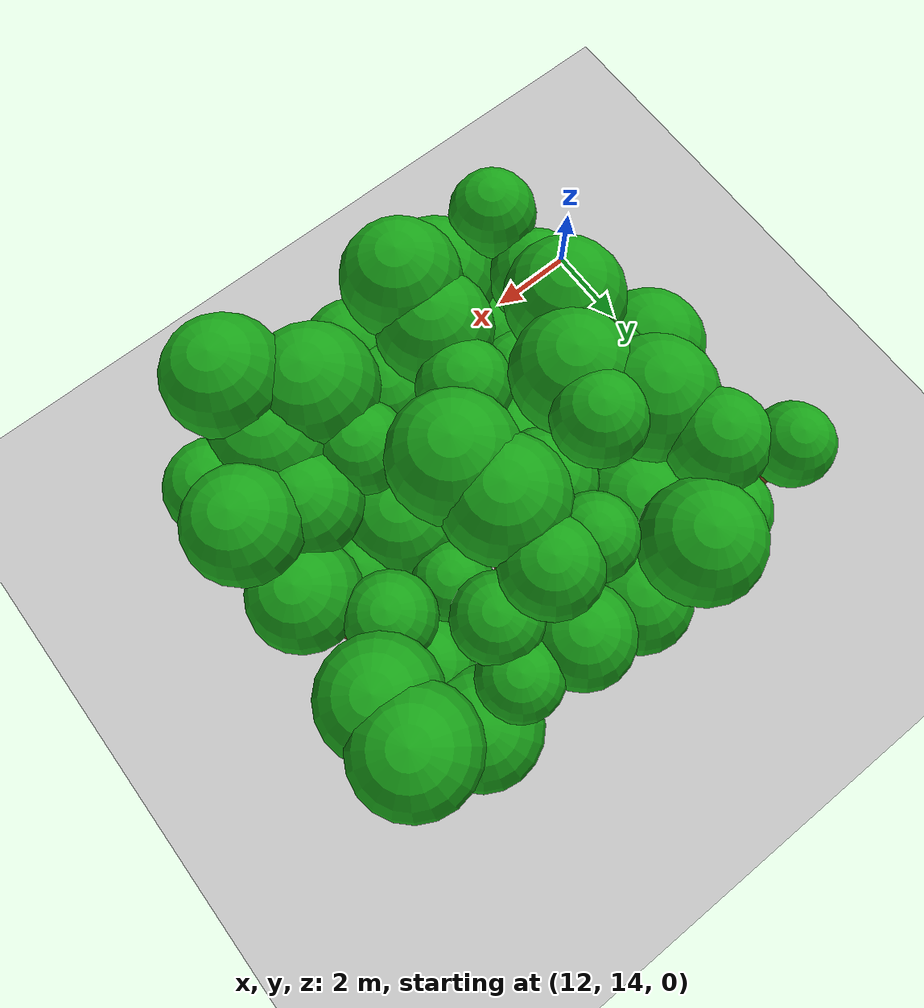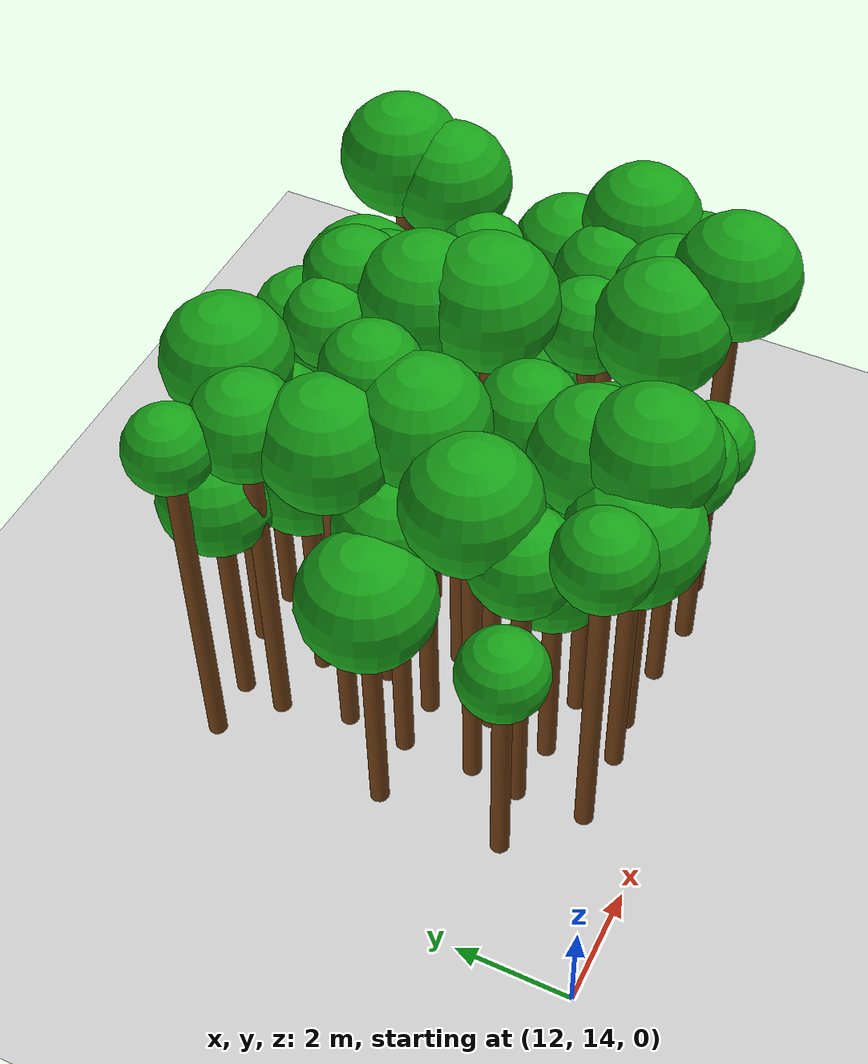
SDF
<sdf version="1.6">
 <world name="forest_world">
  <include><uri>model://sun</uri></include>
  <include><uri>model://ground_plane</uri></include>
  <model name="tree_2219_trunk">
   <static>true</static>
   <pose>14.00 16.16 2.14 0 0 0</pose>
   <link name="link">
    <collision name="collision">
     <geometry><cylinder><radius>0.16</radius><length>4.27</length></cylinder></geometry>
    </collision>
    <visual name="visual">
     <geometry><cylinder><radius>0.16</radius><length>4.27</length></cylinder></geometry>
     <material><ambient>0.35 0.20 0.05 1</ambient><diffuse>0.45 0.25 0.08 1</diffuse></material>
    </visual>
   </link>
  </model>
  <model name="tree_2219_leaf">
   <static>true</static>
   <pose>14.00 16.16 4.71 0 0 0</pose>
   <link name="link">
    <collision name="collision"><geometry><sphere><radius>0.73</radius></sphere></geometry></collision>
    <visual name="visual">
     <geometry><sphere><radius>0.73</radius></sphere></geometry>
     <material><ambient>0.05 0.45 0.05 1</ambient><diffuse>0.10 0.65 0.10 1</diffuse></material>
    </visual>
   </link>
  </model>
  <model name="tree_2221_trunk">
   <static>true</static>
   <pose>14.03 18.38 2.28 0 0 0</pose>
   <link name="link">
    <collision name="collision">
     <geometry><cylinder><radius>0.16</radius><length>4.55</length></cylinder></geometry>
    </collision>
    <visual name="visual">
     <geometry><cylinder><radius>0.16</radius><length>4.55</length></cylinder></geometry>
     <material><ambient>0.35 0.20 0.05 1</ambient><diffuse>0.45 0.25 0.08 1</diffuse></material>
    </visual>
   </link>
  </model>
  <model name="tree_2221_leaf">
   <static>true</static>
   <pose>14.03 18.38 5.21 0 0 0</pose>
   <link name="link">
    <collision name="collision"><geometry><sphere><radius>1.09</radius></sphere></geometry></collision>
    <visual name="visual">
     <geometry><sphere><radius>1.09</radius></sphere></geometry>
     <material><ambient>0.05 0.45 0.05 1</ambient><diffuse>0.10 0.65 0.10 1</diffuse></material>
    </visual>
   </link>
  </model>
  <model name="tree_2224_trunk">
   <static>true</static>
   <pose>14.05 21.52 3.28 0 0 0</pose>
   <link name="link">
    <collision name="collision">
     <geometry><cylinder><radius>0.16</radius><length>6.56</length></cylinder></geometry>
    </collision>
    <visual name="visual">
     <geometry><cylinder><radius>0.16</radius><length>6.56</length></cylinder></geometry>
     <material><ambient>0.35 0.20 0.05 1</ambient><diffuse>0.45 0.25 0.08 1</diffuse></material>
    </visual>
   </link>
  </model>
  <model name="tree_2224_leaf">
   <static>true</static>
   <pose>14.05 21.52 6.99 0 0 0</pose>
   <link name="link">
    <collision name="collision"><geometry><sphere><radius>0.70</radius></sphere></geometry></collision>
    <visual name="visual">
     <geometry><sphere><radius>0.70</radius></sphere></geometry>
     <material><ambient>0.05 0.45 0.05 1</ambient><diffuse>0.10 0.65 0.10 1</diffuse></material>
    </visual>
   </link>
  </model>
  <model name="tree_2273_trunk">
   <static>true</static>
   <pose>15.09 15.13 3.08 0 0 0</pose>
   <link name="link">
    <collision name="collision">
     <geometry><cylinder><radius>0.16</radius><length>6.17</length></cylinder></geometry>
    </collision>
    <visual name="visual">
     <geometry><cylinder><radius>0.16</radius><length>6.17</length></cylinder></geometry>
     <material><ambient>0.35 0.20 0.05 1</ambient><diffuse>0.45 0.25 0.08 1</diffuse></material>
    </visual>
   </link>
  </model>
  <model name="tree_2273_leaf">
   <static>true</static>
   <pose>15.09 15.13 6.64 0 0 0</pose>
   <link name="link">
    <collision name="collision"><geometry><sphere><radius>0.78</radius></sphere></geometry></collision>
    <visual name="visual">
     <geometry><sphere><radius>0.78</radius></sphere></geometry>
     <material><ambient>0.05 0.45 0.05 1</ambient><diffuse>0.10 0.65 0.10 1</diffuse></material>
    </visual>
   </link>
  </model>
  <model name="tree_2274_trunk">
   <static>true</static>
   <pose>15.04 16.34 2.77 0 0 0</pose>
   <link name="link">
    <collision name="collision">
     <geometry><cylinder><radius>0.16</radius><length>5.53</length></cylinder></geometry>
    </collision>
    <visual name="visual">
     <geometry><cylinder><radius>0.16</radius><length>5.53</length></cylinder></geometry>
     <material><ambient>0.35 0.20 0.05 1</ambient><diffuse>0.45 0.25 0.08 1</diffuse></material>
    </visual>
   </link>
  </model>
  <model name="tree_2274_leaf">
   <static>true</static>
   <pose>15.04 16.34 6.05 0 0 0</pose>
   <link name="link">
    <collision name="collision"><geometry><sphere><radius>0.86</radius></sphere></geometry></collision>
    <visual name="visual">
     <geometry><sphere><radius>0.86</radius></sphere></geometry>
     <material><ambient>0.05 0.45 0.05 1</ambient><diffuse>0.10 0.65 0.10 1</diffuse></material>
    </visual>
   </link>
  </model>
  <model name="tree_2275_trunk">
   <static>true</static>
   <pose>15.16 17.21 3.04 0 0 0</pose>
   <link name="link">
    <collision name="collision">
     <geometry><cylinder><radius>0.16</radius><length>6.08</length></cylinder></geometry>
    </collision>
    <visual name="visual">
     <geometry><cylinder><radius>0.16</radius><length>6.08</length></cylinder></geometry>
     <material><ambient>0.35 0.20 0.05 1</ambient><diffuse>0.45 0.25 0.08 1</diffuse></material>
    </visual>
   </link>
  </model>
  <model name="tree_2275_leaf">
   <static>true</static>
   <pose>15.16 17.21 6.72 0 0 0</pose>
   <link name="link">
    <collision name="collision"><geometry><sphere><radius>1.07</radius></sphere></geometry></collision>
    <visual name="visual">
     <geometry><sphere><radius>1.07</radius></sphere></geometry>
     <material><ambient>0.05 0.45 0.05 1</ambient><diffuse>0.10 0.65 0.10 1</diffuse></material>
    </visual>
   </link>
  </model>
  <model name="tree_2276_trunk">
   <static>true</static>
   <pose>15.14 18.47 2.54 0 0 0</pose>
   <link name="link">
    <collision name="collision">
     <geometry><cylinder><radius>0.16</radius><length>5.09</length></cylinder></geometry>
    </collision>
    <visual name="visual">
     <geometry><cylinder><radius>0.16</radius><length>5.09</length></cylinder></geometry>
     <material><ambient>0.35 0.20 0.05 1</ambient><diffuse>0.45 0.25 0.08 1</diffuse></material>
    </visual>
   </link>
  </model>
  <model name="tree_2276_leaf">
   <static>true</static>
   <pose>15.14 18.47 5.66 0 0 0</pose>
   <link name="link">
    <collision name="collision"><geometry><sphere><radius>0.96</radius></sphere></geometry></collision>
    <visual name="visual">
     <geometry><sphere><radius>0.96</radius></sphere></geometry>
     <material><ambient>0.05 0.45 0.05 1</ambient><diffuse>0.10 0.65 0.10 1</diffuse></material>
    </visual>
   </link>
  </model>
  <model name="tree_2277_trunk">
   <static>true</static>
   <pose>15.20 19.56 3.13 0 0 0</pose>
   <link name="link">
    <collision name="collision">
     <geometry><cylinder><radius>0.16</radius><length>6.26</length></cylinder></geometry>
    </collision>
    <visual name="visual">
     <geometry><cylinder><radius>0.16</radius><length>6.26</length></cylinder></geometry>
     <material><ambient>0.35 0.20 0.05 1</ambient><diffuse>0.45 0.25 0.08 1</diffuse></material>
    </visual>
   </link>
  </model>
  <model name="tree_2277_leaf">
   <static>true</static>
   <pose>15.20 19.56 6.90 0 0 0</pose>
   <link name="link">
    <collision name="collision"><geometry><sphere><radius>1.06</radius></sphere></geometry></collision>
    <visual name="visual">
     <geometry><sphere><radius>1.06</radius></sphere></geometry>
     <material><ambient>0.05 0.45 0.05 1</ambient><diffuse>0.10 0.65 0.10 1</diffuse></material>
    </visual>
   </link>
  </model>
  <model name="tree_2278_trunk">
   <static>true</static>
   <pose>14.93 20.75 3.23 0 0 0</pose>
   <link name="link">
    <collision name="collision">
     <geometry><cylinder><radius>0.16</radius><length>6.47</length></cylinder></geometry>
    </collision>
    <visual name="visual">
     <geometry><cylinder><radius>0.16</radius><length>6.47</length></cylinder></geometry>
     <material><ambient>0.35 0.20 0.05 1</ambient><diffuse>0.45 0.25 0.08 1</diffuse></material>
    </visual>
   </link>
  </model>
  <model name="tree_2278_leaf">
   <static>true</static>
   <pose>14.93 20.75 6.99 0 0 0</pose>
   <link name="link">
    <collision name="collision"><geometry><sphere><radius>0.87</radius></sphere></geometry></collision>
    <visual name="visual">
     <geometry><sphere><radius>0.87</radius></sphere></geometry>
     <material><ambient>0.05 0.45 0.05 1</ambient><diffuse>0.10 0.65 0.10 1</diffuse></material>
    </visual>
   </link>
  </model>
  <model name="tree_2279_trunk">
   <static>true</static>
   <pose>15.03 21.53 2.20 0 0 0</pose>
   <link name="link">
    <collision name="collision">
     <geometry><cylinder><radius>0.16</radius><length>4.40</length></cylinder></geometry>
    </collision>
    <visual name="visual">
     <geometry><cylinder><radius>0.16</radius><length>4.40</length></cylinder></geometry>
     <material><ambient>0.35 0.20 0.05 1</ambient><diffuse>0.45 0.25 0.08 1</diffuse></material>
    </visual>
   </link>
  </model>
  <model name="tree_2279_leaf">
   <static>true</static>
   <pose>15.03 21.53 4.98 0 0 0</pose>
   <link name="link">
    <collision name="collision"><geometry><sphere><radius>0.97</radius></sphere></geometry></collision>
    <visual name="visual">
     <geometry><sphere><radius>0.97</radius></sphere></geometry>
     <material><ambient>0.05 0.45 0.05 1</ambient><diffuse>0.10 0.65 0.10 1</diffuse></material>
    </visual>
   </link>
  </model>
  <model name="tree_2328_trunk">
   <static>true</static>
   <pose>16.38 15.13 2.57 0 0 0</pose>
   <link name="link">
    <collision name="collision">
     <geometry><cylinder><radius>0.16</radius><length>5.15</length></cylinder></geometry>
    </collision>
    <visual name="visual">
     <geometry><cylinder><radius>0.16</radius><length>5.15</length></cylinder></geometry>
     <material><ambient>0.35 0.20 0.05 1</ambient><diffuse>0.45 0.25 0.08 1</diffuse></material>
    </visual>
   </link>
  </model>
  <model name="tree_2328_leaf">
   <static>true</static>
   <pose>16.38 15.13 5.80 0 0 0</pose>
   <link name="link">
    <collision name="collision"><geometry><sphere><radius>1.10</radius></sphere></geometry></collision>
    <visual name="visual">
     <geometry><sphere><radius>1.10</radius></sphere></geometry>
     <material><ambient>0.05 0.45 0.05 1</ambient><diffuse>0.10 0.65 0.10 1</diffuse></material>
    </visual>
   </link>
  </model>
  <model name="tree_2329_trunk">
   <static>true</static>
   <pose>16.06 16.24 2.10 0 0 0</pose>
   <link name="link">
    <collision name="collision">
     <geometry><cylinder><radius>0.16</radius><length>4.20</length></cylinder></geometry>
    </collision>
    <visual name="visual">
     <geometry><cylinder><radius>0.16</radius><length>4.20</length></cylinder></geometry>
     <material><ambient>0.35 0.20 0.05 1</ambient><diffuse>0.45 0.25 0.08 1</diffuse></material>
    </visual>
   </link>
  </model>
  <model name="tree_2329_leaf">
   <static>true</static>
   <pose>16.06 16.24 4.77 0 0 0</pose>
   <link name="link">
    <collision name="collision"><geometry><sphere><radius>0.96</radius></sphere></geometry></collision>
    <visual name="visual">
     <geometry><sphere><radius>0.96</radius></sphere></geometry>
     <material><ambient>0.05 0.45 0.05 1</ambient><diffuse>0.10 0.65 0.10 1</diffuse></material>
    </visual>
   </link>
  </model>
  <model name="tree_2330_trunk">
   <static>true</static>
   <pose>16.18 17.35 2.27 0 0 0</pose>
   <link name="link">
    <collision name="collision">
     <geometry><cylinder><radius>0.16</radius><length>4.54</length></cylinder></geometry>
    </collision>
    <visual name="visual">
     <geometry><cylinder><radius>0.16</radius><length>4.54</length></cylinder></geometry>
     <material><ambient>0.35 0.20 0.05 1</ambient><diffuse>0.45 0.25 0.08 1</diffuse></material>
    </visual>
   </link>
  </model>
  <model name="tree_2330_leaf">
   <static>true</static>
   <pose>16.18 17.35 5.06 0 0 0</pose>
   <link name="link">
    <collision name="collision"><geometry><sphere><radius>0.87</radius></sphere></geometry></collision>
    <visual name="visual">
     <geometry><sphere><radius>0.87</radius></sphere></geometry>
     <material><ambient>0.05 0.45 0.05 1</ambient><diffuse>0.10 0.65 0.10 1</diffuse></material>
    </visual>
   </link>
  </model>
  <model name="tree_2331_trunk">
   <static>true</static>
   <pose>16.03 18.43 3.21 0 0 0</pose>
   <link name="link">
    <collision name="collision">
     <geometry><cylinder><radius>0.16</radius><length>6.42</length></cylinder></geometry>
    </collision>
    <visual name="visual">
     <geometry><cylinder><radius>0.16</radius><length>6.42</length></cylinder></geometry>
     <material><ambient>0.35 0.20 0.05 1</ambient><diffuse>0.45 0.25 0.08 1</diffuse></material>
    </visual>
   </link>
  </model>
  <model name="tree_2331_leaf">
   <static>true</static>
   <pose>16.03 18.43 7.06 0 0 0</pose>
   <link name="link">
    <collision name="collision"><geometry><sphere><radius>1.06</radius></sphere></geometry></collision>
    <visual name="visual">
     <geometry><sphere><radius>1.06</radius></sphere></geometry>
     <material><ambient>0.05 0.45 0.05 1</ambient><diffuse>0.10 0.65 0.10 1</diffuse></material>
    </visual>
   </link>
  </model>
  <model name="tree_2332_trunk">
   <static>true</static>
   <pose>16.31 19.38 3.48 0 0 0</pose>
   <link name="link">
    <collision name="collision">
     <geometry><cylinder><radius>0.16</radius><length>6.96</length></cylinder></geometry>
    </collision>
    <visual name="visual">
     <geometry><cylinder><radius>0.16</radius><length>6.96</length></cylinder></geometry>
     <material><ambient>0.35 0.20 0.05 1</ambient><diffuse>0.45 0.25 0.08 1</diffuse></material>
    </visual>
   </link>
  </model>
  <model name="tree_2332_leaf">
   <static>true</static>
   <pose>16.31 19.38 7.44 0 0 0</pose>
   <link name="link">
    <collision name="collision"><geometry><sphere><radius>0.80</radius></sphere></geometry></collision>
    <visual name="visual">
     <geometry><sphere><radius>0.80</radius></sphere></geometry>
     <material><ambient>0.05 0.45 0.05 1</ambient><diffuse>0.10 0.65 0.10 1</diffuse></material>
    </visual>
   </link>
  </model>
  <model name="tree_2333_trunk">
   <static>true</static>
   <pose>16.07 20.55 2.18 0 0 0</pose>
   <link name="link">
    <collision name="collision">
     <geometry><cylinder><radius>0.16</radius><length>4.35</length></cylinder></geometry>
    </collision>
    <visual name="visual">
     <geometry><cylinder><radius>0.16</radius><length>4.35</length></cylinder></geometry>
     <material><ambient>0.35 0.20 0.05 1</ambient><diffuse>0.45 0.25 0.08 1</diffuse></material>
    </visual>
   </link>
  </model>
  <model name="tree_2333_leaf">
   <static>true</static>
   <pose>16.07 20.55 4.97 0 0 0</pose>
   <link name="link">
    <collision name="collision"><geometry><sphere><radius>1.03</radius></sphere></geometry></collision>
    <visual name="visual">
     <geometry><sphere><radius>1.03</radius></sphere></geometry>
     <material><ambient>0.05 0.45 0.05 1</ambient><diffuse>0.10 0.65 0.10 1</diffuse></material>
    </visual>
   </link>
  </model>
  <model name="tree_2334_trunk">
   <static>true</static>
   <pose>16.18 21.82 3.10 0 0 0</pose>
   <link name="link">
    <collision name="collision">
     <geometry><cylinder><radius>0.16</radius><length>6.20</length></cylinder></geometry>
    </collision>
    <visual name="visual">
     <geometry><cylinder><radius>0.16</radius><length>6.20</length></cylinder></geometry>
     <material><ambient>0.35 0.20 0.05 1</ambient><diffuse>0.45 0.25 0.08 1</diffuse></material>
    </visual>
   </link>
  </model>
  <model name="tree_2334_leaf">
   <static>true</static>
   <pose>16.18 21.82 6.82 0 0 0</pose>
   <link name="link">
    <collision name="collision"><geometry><sphere><radius>1.04</radius></sphere></geometry></collision>
    <visual name="visual">
     <geometry><sphere><radius>1.04</radius></sphere></geometry>
     <material><ambient>0.05 0.45 0.05 1</ambient><diffuse>0.10 0.65 0.10 1</diffuse></material>
    </visual>
   </link>
  </model>
  <model name="tree_2383_trunk">
   <static>true</static>
   <pose>17.15 15.24 3.08 0 0 0</pose>
   <link name="link">
    <collision name="collision">
     <geometry><cylinder><radius>0.16</radius><length>6.15</length></cylinder></geometry>
    </collision>
    <visual name="visual">
     <geometry><cylinder><radius>0.16</radius><length>6.15</length></cylinder></geometry>
     <material><ambient>0.35 0.20 0.05 1</ambient><diffuse>0.45 0.25 0.08 1</diffuse></material>
    </visual>
   </link>
  </model>
  <model name="tree_2383_leaf">
   <static>true</static>
   <pose>17.15 15.24 6.79 0 0 0</pose>
   <link name="link">
    <collision name="collision"><geometry><sphere><radius>1.06</radius></sphere></geometry></collision>
    <visual name="visual">
     <geometry><sphere><radius>1.06</radius></sphere></geometry>
     <material><ambient>0.05 0.45 0.05 1</ambient><diffuse>0.10 0.65 0.10 1</diffuse></material>
    </visual>
   </link>
  </model>
  <model name="tree_2384_trunk">
   <static>true</static>
   <pose>17.16 16.16 2.88 0 0 0</pose>
   <link name="link">
    <collision name="collision">
     <geometry><cylinder><radius>0.16</radius><length>5.75</length></cylinder></geometry>
    </collision>
    <visual name="visual">
     <geometry><cylinder><radius>0.16</radius><length>5.75</length></cylinder></geometry>
     <material><ambient>0.35 0.20 0.05 1</ambient><diffuse>0.45 0.25 0.08 1</diffuse></material>
    </visual>
   </link>
  </model>
  <model name="tree_2384_leaf">
   <static>true</static>
   <pose>17.16 16.16 6.38 0 0 0</pose>
   <link name="link">
    <collision name="collision"><geometry><sphere><radius>1.04</radius></sphere></geometry></collision>
    <visual name="visual">
     <geometry><sphere><radius>1.04</radius></sphere></geometry>
     <material><ambient>0.05 0.45 0.05 1</ambient><diffuse>0.10 0.65 0.10 1</diffuse></material>
    </visual>
   </link>
  </model>
  <model name="tree_2385_trunk">
   <static>true</static>
   <pose>17.42 17.33 2.97 0 0 0</pose>
   <link name="link">
    <collision name="collision">
     <geometry><cylinder><radius>0.16</radius><length>5.93</length></cylinder></geometry>
    </collision>
    <visual name="visual">
     <geometry><cylinder><radius>0.16</radius><length>5.93</length></cylinder></geometry>
     <material><ambient>0.35 0.20 0.05 1</ambient><diffuse>0.45 0.25 0.08 1</diffuse></material>
    </visual>
   </link>
  </model>
  <model name="tree_2385_leaf">
   <static>true</static>
   <pose>17.42 17.33 6.44 0 0 0</pose>
   <link name="link">
    <collision name="collision"><geometry><sphere><radius>0.84</radius></sphere></geometry></collision>
    <visual name="visual">
     <geometry><sphere><radius>0.84</radius></sphere></geometry>
     <material><ambient>0.05 0.45 0.05 1</ambient><diffuse>0.10 0.65 0.10 1</diffuse></material>
    </visual>
   </link>
  </model>
  <model name="tree_2386_trunk">
   <static>true</static>
   <pose>17.19 18.42 2.17 0 0 0</pose>
   <link name="link">
    <collision name="collision">
     <geometry><cylinder><radius>0.16</radius><length>4.34</length></cylinder></geometry>
    </collision>
    <visual name="visual">
     <geometry><cylinder><radius>0.16</radius><length>4.34</length></cylinder></geometry>
     <material><ambient>0.35 0.20 0.05 1</ambient><diffuse>0.45 0.25 0.08 1</diffuse></material>
    </visual>
   </link>
  </model>
  <model name="tree_2386_leaf">
   <static>true</static>
   <pose>17.19 18.42 4.97 0 0 0</pose>
   <link name="link">
    <collision name="collision"><geometry><sphere><radius>1.05</radius></sphere></geometry></collision>
    <visual name="visual">
     <geometry><sphere><radius>1.05</radius></sphere></geometry>
     <material><ambient>0.05 0.45 0.05 1</ambient><diffuse>0.10 0.65 0.10 1</diffuse></material>
    </visual>
   </link>
  </model>
  <model name="tree_2387_trunk">
   <static>true</static>
   <pose>17.28 19.35 2.67 0 0 0</pose>
   <link name="link">
    <collision name="collision">
     <geometry><cylinder><radius>0.16</radius><length>5.34</length></cylinder></geometry>
    </collision>
    <visual name="visual">
     <geometry><cylinder><radius>0.16</radius><length>5.34</length></cylinder></geometry>
     <material><ambient>0.35 0.20 0.05 1</ambient><diffuse>0.45 0.25 0.08 1</diffuse></material>
    </visual>
   </link>
  </model>
  <model name="tree_2387_leaf">
   <static>true</static>
   <pose>17.28 19.35 5.90 0 0 0</pose>
   <link name="link">
    <collision name="collision"><geometry><sphere><radius>0.93</radius></sphere></geometry></collision>
    <visual name="visual">
     <geometry><sphere><radius>0.93</radius></sphere></geometry>
     <material><ambient>0.05 0.45 0.05 1</ambient><diffuse>0.10 0.65 0.10 1</diffuse></material>
    </visual>
   </link>
  </model>
  <model name="tree_2388_trunk">
   <static>true</static>
   <pose>17.48 20.73 3.23 0 0 0</pose>
   <link name="link">
    <collision name="collision">
     <geometry><cylinder><radius>0.16</radius><length>6.45</length></cylinder></geometry>
    </collision>
    <visual name="visual">
     <geometry><cylinder><radius>0.16</radius><length>6.45</length></cylinder></geometry>
     <material><ambient>0.35 0.20 0.05 1</ambient><diffuse>0.45 0.25 0.08 1</diffuse></material>
    </visual>
   </link>
  </model>
  <model name="tree_2388_leaf">
   <static>true</static>
   <pose>17.48 20.73 6.90 0 0 0</pose>
   <link name="link">
    <collision name="collision"><geometry><sphere><radius>0.74</radius></sphere></geometry></collision>
    <visual name="visual">
     <geometry><sphere><radius>0.74</radius></sphere></geometry>
     <material><ambient>0.05 0.45 0.05 1</ambient><diffuse>0.10 0.65 0.10 1</diffuse></material>
    </visual>
   </link>
  </model>
  <model name="tree_2389_trunk">
   <static>true</static>
   <pose>17.12 21.81 2.12 0 0 0</pose>
   <link name="link">
    <collision name="collision">
     <geometry><cylinder><radius>0.16</radius><length>4.24</length></cylinder></geometry>
    </collision>
    <visual name="visual">
     <geometry><cylinder><radius>0.16</radius><length>4.24</length></cylinder></geometry>
     <material><ambient>0.35 0.20 0.05 1</ambient><diffuse>0.45 0.25 0.08 1</diffuse></material>
    </visual>
   </link>
  </model>
  <model name="tree_2389_leaf">
   <static>true</static>
   <pose>17.12 21.81 4.84 0 0 0</pose>
   <link name="link">
    <collision name="collision"><geometry><sphere><radius>1.00</radius></sphere></geometry></collision>
    <visual name="visual">
     <geometry><sphere><radius>1.00</radius></sphere></geometry>
     <material><ambient>0.05 0.45 0.05 1</ambient><diffuse>0.10 0.65 0.10 1</diffuse></material>
    </visual>
   </link>
  </model>
  <model name="tree_2438_trunk">
   <static>true</static>
   <pose>18.34 15.18 2.43 0 0 0</pose>
   <link name="link">
    <collision name="collision">
     <geometry><cylinder><radius>0.16</radius><length>4.86</length></cylinder></geometry>
    </collision>
    <visual name="visual">
     <geometry><cylinder><radius>0.16</radius><length>4.86</length></cylinder></geometry>
     <material><ambient>0.35 0.20 0.05 1</ambient><diffuse>0.45 0.25 0.08 1</diffuse></material>
    </visual>
   </link>
  </model>
  <model name="tree_2438_leaf">
   <static>true</static>
   <pose>18.34 15.18 5.42 0 0 0</pose>
   <link name="link">
    <collision name="collision"><geometry><sphere><radius>0.93</radius></sphere></geometry></collision>
    <visual name="visual">
     <geometry><sphere><radius>0.93</radius></sphere></geometry>
     <material><ambient>0.05 0.45 0.05 1</ambient><diffuse>0.10 0.65 0.10 1</diffuse></material>
    </visual>
   </link>
  </model>
  <model name="tree_2439_trunk">
   <static>true</static>
   <pose>18.29 16.29 2.46 0 0 0</pose>
   <link name="link">
    <collision name="collision">
     <geometry><cylinder><radius>0.16</radius><length>4.91</length></cylinder></geometry>
    </collision>
    <visual name="visual">
     <geometry><cylinder><radius>0.16</radius><length>4.91</length></cylinder></geometry>
     <material><ambient>0.35 0.20 0.05 1</ambient><diffuse>0.45 0.25 0.08 1</diffuse></material>
    </visual>
   </link>
  </model>
  <model name="tree_2439_leaf">
   <static>true</static>
   <pose>18.29 16.29 5.47 0 0 0</pose>
   <link name="link">
    <collision name="collision"><geometry><sphere><radius>0.94</radius></sphere></geometry></collision>
    <visual name="visual">
     <geometry><sphere><radius>0.94</radius></sphere></geometry>
     <material><ambient>0.05 0.45 0.05 1</ambient><diffuse>0.10 0.65 0.10 1</diffuse></material>
    </visual>
   </link>
  </model>
  <model name="tree_2440_trunk">
   <static>true</static>
   <pose>18.50 17.27 2.02 0 0 0</pose>
   <link name="link">
    <collision name="collision">
     <geometry><cylinder><radius>0.16</radius><length>4.04</length></cylinder></geometry>
    </collision>
    <visual name="visual">
     <geometry><cylinder><radius>0.16</radius><length>4.04</length></cylinder></geometry>
     <material><ambient>0.35 0.20 0.05 1</ambient><diffuse>0.45 0.25 0.08 1</diffuse></material>
    </visual>
   </link>
  </model>
  <model name="tree_2440_leaf">
   <static>true</static>
   <pose>18.50 17.27 4.62 0 0 0</pose>
   <link name="link">
    <collision name="collision"><geometry><sphere><radius>0.97</radius></sphere></geometry></collision>
    <visual name="visual">
     <geometry><sphere><radius>0.97</radius></sphere></geometry>
     <material><ambient>0.05 0.45 0.05 1</ambient><diffuse>0.10 0.65 0.10 1</diffuse></material>
    </visual>
   </link>
  </model>
  <model name="tree_2441_trunk">
   <static>true</static>
   <pose>18.47 18.48 3.36 0 0 0</pose>
   <link name="link">
    <collision name="collision">
     <geometry><cylinder><radius>0.16</radius><length>6.73</length></cylinder></geometry>
    </collision>
    <visual name="visual">
     <geometry><cylinder><radius>0.16</radius><length>6.73</length></cylinder></geometry>
     <material><ambient>0.35 0.20 0.05 1</ambient><diffuse>0.45 0.25 0.08 1</diffuse></material>
    </visual>
   </link>
  </model>
  <model name="tree_2441_leaf">
   <static>true</static>
   <pose>18.47 18.48 7.38 0 0 0</pose>
   <link name="link">
    <collision name="collision"><geometry><sphere><radius>1.10</radius></sphere></geometry></collision>
    <visual name="visual">
     <geometry><sphere><radius>1.10</radius></sphere></geometry>
     <material><ambient>0.05 0.45 0.05 1</ambient><diffuse>0.10 0.65 0.10 1</diffuse></material>
    </visual>
   </link>
  </model>
  <model name="tree_2442_trunk">
   <static>true</static>
   <pose>18.25 19.47 3.31 0 0 0</pose>
   <link name="link">
    <collision name="collision">
     <geometry><cylinder><radius>0.16</radius><length>6.62</length></cylinder></geometry>
    </collision>
    <visual name="visual">
     <geometry><cylinder><radius>0.16</radius><length>6.62</length></cylinder></geometry>
     <material><ambient>0.35 0.20 0.05 1</ambient><diffuse>0.45 0.25 0.08 1</diffuse></material>
    </visual>
   </link>
  </model>
  <model name="tree_2442_leaf">
   <static>true</static>
   <pose>18.25 19.47 7.26 0 0 0</pose>
   <link name="link">
    <collision name="collision"><geometry><sphere><radius>1.07</radius></sphere></geometry></collision>
    <visual name="visual">
     <geometry><sphere><radius>1.07</radius></sphere></geometry>
     <material><ambient>0.05 0.45 0.05 1</ambient><diffuse>0.10 0.65 0.10 1</diffuse></material>
    </visual>
   </link>
  </model>
  <model name="tree_2443_trunk">
   <static>true</static>
   <pose>18.32 20.71 3.31 0 0 0</pose>
   <link name="link">
    <collision name="collision">
     <geometry><cylinder><radius>0.16</radius><length>6.62</length></cylinder></geometry>
    </collision>
    <visual name="visual">
     <geometry><cylinder><radius>0.16</radius><length>6.62</length></cylinder></geometry>
     <material><ambient>0.35 0.20 0.05 1</ambient><diffuse>0.45 0.25 0.08 1</diffuse></material>
    </visual>
   </link>
  </model>
  <model name="tree_2443_leaf">
   <static>true</static>
   <pose>18.32 20.71 7.12 0 0 0</pose>
   <link name="link">
    <collision name="collision"><geometry><sphere><radius>0.85</radius></sphere></geometry></collision>
    <visual name="visual">
     <geometry><sphere><radius>0.85</radius></sphere></geometry>
     <material><ambient>0.05 0.45 0.05 1</ambient><diffuse>0.10 0.65 0.10 1</diffuse></material>
    </visual>
   </link>
  </model>
  <model name="tree_2444_trunk">
   <static>true</static>
   <pose>18.42 21.75 2.58 0 0 0</pose>
   <link name="link">
    <collision name="collision">
     <geometry><cylinder><radius>0.16</radius><length>5.17</length></cylinder></geometry>
    </collision>
    <visual name="visual">
     <geometry><cylinder><radius>0.16</radius><length>5.17</length></cylinder></geometry>
     <material><ambient>0.35 0.20 0.05 1</ambient><diffuse>0.45 0.25 0.08 1</diffuse></material>
    </visual>
   </link>
  </model>
  <model name="tree_2444_leaf">
   <static>true</static>
   <pose>18.42 21.75 5.72 0 0 0</pose>
   <link name="link">
    <collision name="collision"><geometry><sphere><radius>0.92</radius></sphere></geometry></collision>
    <visual name="visual">
     <geometry><sphere><radius>0.92</radius></sphere></geometry>
     <material><ambient>0.05 0.45 0.05 1</ambient><diffuse>0.10 0.65 0.10 1</diffuse></material>
    </visual>
   </link>
  </model>
  <model name="tree_2493_trunk">
   <static>true</static>
   <pose>19.45 15.05 2.18 0 0 0</pose>
   <link name="link">
    <collision name="collision">
     <geometry><cylinder><radius>0.16</radius><length>4.36</length></cylinder></geometry>
    </collision>
    <visual name="visual">
     <geometry><cylinder><radius>0.16</radius><length>4.36</length></cylinder></geometry>
     <material><ambient>0.35 0.20 0.05 1</ambient><diffuse>0.45 0.25 0.08 1</diffuse></material>
    </visual>
   </link>
  </model>
  <model name="tree_2493_leaf">
   <static>true</static>
   <pose>19.45 15.05 4.80 0 0 0</pose>
   <link name="link">
    <collision name="collision"><geometry><sphere><radius>0.75</radius></sphere></geometry></collision>
    <visual name="visual">
     <geometry><sphere><radius>0.75</radius></sphere></geometry>
     <material><ambient>0.05 0.45 0.05 1</ambient><diffuse>0.10 0.65 0.10 1</diffuse></material>
    </visual>
   </link>
  </model>
  <model name="tree_2494_trunk">
   <static>true</static>
   <pose>19.47 16.03 3.17 0 0 0</pose>
   <link name="link">
    <collision name="collision">
     <geometry><cylinder><radius>0.16</radius><length>6.34</length></cylinder></geometry>
    </collision>
    <visual name="visual">
     <geometry><cylinder><radius>0.16</radius><length>6.34</length></cylinder></geometry>
     <material><ambient>0.35 0.20 0.05 1</ambient><diffuse>0.45 0.25 0.08 1</diffuse></material>
    </visual>
   </link>
  </model>
  <model name="tree_2494_leaf">
   <static>true</static>
   <pose>19.47 16.03 6.99 0 0 0</pose>
   <link name="link">
    <collision name="collision"><geometry><sphere><radius>1.09</radius></sphere></geometry></collision>
    <visual name="visual">
     <geometry><sphere><radius>1.09</radius></sphere></geometry>
     <material><ambient>0.05 0.45 0.05 1</ambient><diffuse>0.10 0.65 0.10 1</diffuse></material>
    </visual>
   </link>
  </model>
  <model name="tree_2495_trunk">
   <static>true</static>
   <pose>19.40 17.22 3.07 0 0 0</pose>
   <link name="link">
    <collision name="collision">
     <geometry><cylinder><radius>0.16</radius><length>6.15</length></cylinder></geometry>
    </collision>
    <visual name="visual">
     <geometry><cylinder><radius>0.16</radius><length>6.15</length></cylinder></geometry>
     <material><ambient>0.35 0.20 0.05 1</ambient><diffuse>0.45 0.25 0.08 1</diffuse></material>
    </visual>
   </link>
  </model>
  <model name="tree_2495_leaf">
   <static>true</static>
   <pose>19.40 17.22 6.62 0 0 0</pose>
   <link name="link">
    <collision name="collision"><geometry><sphere><radius>0.79</radius></sphere></geometry></collision>
    <visual name="visual">
     <geometry><sphere><radius>0.79</radius></sphere></geometry>
     <material><ambient>0.05 0.45 0.05 1</ambient><diffuse>0.10 0.65 0.10 1</diffuse></material>
    </visual>
   </link>
  </model>
  <model name="tree_2496_trunk">
   <static>true</static>
   <pose>19.50 18.27 2.35 0 0 0</pose>
   <link name="link">
    <collision name="collision">
     <geometry><cylinder><radius>0.16</radius><length>4.70</length></cylinder></geometry>
    </collision>
    <visual name="visual">
     <geometry><cylinder><radius>0.16</radius><length>4.70</length></cylinder></geometry>
     <material><ambient>0.35 0.20 0.05 1</ambient><diffuse>0.45 0.25 0.08 1</diffuse></material>
    </visual>
   </link>
  </model>
  <model name="tree_2496_leaf">
   <static>true</static>
   <pose>19.50 18.27 5.33 0 0 0</pose>
   <link name="link">
    <collision name="collision"><geometry><sphere><radius>1.04</radius></sphere></geometry></collision>
    <visual name="visual">
     <geometry><sphere><radius>1.04</radius></sphere></geometry>
     <material><ambient>0.05 0.45 0.05 1</ambient><diffuse>0.10 0.65 0.10 1</diffuse></material>
    </visual>
   </link>
  </model>
  <model name="tree_2497_trunk">
   <static>true</static>
   <pose>19.51 19.66 2.49 0 0 0</pose>
   <link name="link">
    <collision name="collision">
     <geometry><cylinder><radius>0.16</radius><length>4.99</length></cylinder></geometry>
    </collision>
    <visual name="visual">
     <geometry><cylinder><radius>0.16</radius><length>4.99</length></cylinder></geometry>
     <material><ambient>0.35 0.20 0.05 1</ambient><diffuse>0.45 0.25 0.08 1</diffuse></material>
    </visual>
   </link>
  </model>
  <model name="tree_2497_leaf">
   <static>true</static>
   <pose>19.51 19.66 5.41 0 0 0</pose>
   <link name="link">
    <collision name="collision"><geometry><sphere><radius>0.71</radius></sphere></geometry></collision>
    <visual name="visual">
     <geometry><sphere><radius>0.71</radius></sphere></geometry>
     <material><ambient>0.05 0.45 0.05 1</ambient><diffuse>0.10 0.65 0.10 1</diffuse></material>
    </visual>
   </link>
  </model>
  <model name="tree_2498_trunk">
   <static>true</static>
   <pose>19.38 20.73 2.92 0 0 0</pose>
   <link name="link">
    <collision name="collision">
     <geometry><cylinder><radius>0.16</radius><length>5.84</length></cylinder></geometry>
    </collision>
    <visual name="visual">
     <geometry><cylinder><radius>0.16</radius><length>5.84</length></cylinder></geometry>
     <material><ambient>0.35 0.20 0.05 1</ambient><diffuse>0.45 0.25 0.08 1</diffuse></material>
    </visual>
   </link>
  </model>
  <model name="tree_2498_leaf">
   <static>true</static>
   <pose>19.38 20.73 6.30 0 0 0</pose>
   <link name="link">
    <collision name="collision"><geometry><sphere><radius>0.78</radius></sphere></geometry></collision>
    <visual name="visual">
     <geometry><sphere><radius>0.78</radius></sphere></geometry>
     <material><ambient>0.05 0.45 0.05 1</ambient><diffuse>0.10 0.65 0.10 1</diffuse></material>
    </visual>
   </link>
  </model>
  <model name="tree_2499_trunk">
   <static>true</static>
   <pose>19.64 21.65 2.71 0 0 0</pose>
   <link name="link">
    <collision name="collision">
     <geometry><cylinder><radius>0.16</radius><length>5.42</length></cylinder></geometry>
    </collision>
    <visual name="visual">
     <geometry><cylinder><radius>0.16</radius><length>5.42</length></cylinder></geometry>
     <material><ambient>0.35 0.20 0.05 1</ambient><diffuse>0.45 0.25 0.08 1</diffuse></material>
    </visual>
   </link>
  </model>
  <model name="tree_2499_leaf">
   <static>true</static>
   <pose>19.64 21.65 5.87 0 0 0</pose>
   <link name="link">
    <collision name="collision"><geometry><sphere><radius>0.75</radius></sphere></geometry></collision>
    <visual name="visual">
     <geometry><sphere><radius>0.75</radius></sphere></geometry>
     <material><ambient>0.05 0.45 0.05 1</ambient><diffuse>0.10 0.65 0.10 1</diffuse></material>
    </visual>
   </link>
  </model>
  <model name="tree_2548_trunk">
   <static>true</static>
   <pose>20.50 15.25 3.44 0 0 0</pose>
   <link name="link">
    <collision name="collision">
     <geometry><cylinder><radius>0.16</radius><length>6.89</length></cylinder></geometry>
    </collision>
    <visual name="visual">
     <geometry><cylinder><radius>0.16</radius><length>6.89</length></cylinder></geometry>
     <material><ambient>0.35 0.20 0.05 1</ambient><diffuse>0.45 0.25 0.08 1</diffuse></material>
    </visual>
   </link>
  </model>
  <model name="tree_2548_leaf">
   <static>true</static>
   <pose>20.50 15.25 7.50 0 0 0</pose>
   <link name="link">
    <collision name="collision"><geometry><sphere><radius>1.02</radius></sphere></geometry></collision>
    <visual name="visual">
     <geometry><sphere><radius>1.02</radius></sphere></geometry>
     <material><ambient>0.05 0.45 0.05 1</ambient><diffuse>0.10 0.65 0.10 1</diffuse></material>
    </visual>
   </link>
  </model>
  <model name="tree_2549_trunk">
   <static>true</static>
   <pose>20.44 16.20 2.98 0 0 0</pose>
   <link name="link">
    <collision name="collision">
     <geometry><cylinder><radius>0.16</radius><length>5.96</length></cylinder></geometry>
    </collision>
    <visual name="visual">
     <geometry><cylinder><radius>0.16</radius><length>5.96</length></cylinder></geometry>
     <material><ambient>0.35 0.20 0.05 1</ambient><diffuse>0.45 0.25 0.08 1</diffuse></material>
    </visual>
   </link>
  </model>
  <model name="tree_2549_leaf">
   <static>true</static>
   <pose>20.44 16.20 6.62 0 0 0</pose>
   <link name="link">
    <collision name="collision"><geometry><sphere><radius>1.10</radius></sphere></geometry></collision>
    <visual name="visual">
     <geometry><sphere><radius>1.10</radius></sphere></geometry>
     <material><ambient>0.05 0.45 0.05 1</ambient><diffuse>0.10 0.65 0.10 1</diffuse></material>
    </visual>
   </link>
  </model>
  <model name="tree_2550_trunk">
   <static>true</static>
   <pose>20.66 17.38 2.97 0 0 0</pose>
   <link name="link">
    <collision name="collision">
     <geometry><cylinder><radius>0.16</radius><length>5.94</length></cylinder></geometry>
    </collision>
    <visual name="visual">
     <geometry><cylinder><radius>0.16</radius><length>5.94</length></cylinder></geometry>
     <material><ambient>0.35 0.20 0.05 1</ambient><diffuse>0.45 0.25 0.08 1</diffuse></material>
    </visual>
   </link>
  </model>
  <model name="tree_2550_leaf">
   <static>true</static>
   <pose>20.66 17.38 6.50 0 0 0</pose>
   <link name="link">
    <collision name="collision"><geometry><sphere><radius>0.93</radius></sphere></geometry></collision>
    <visual name="visual">
     <geometry><sphere><radius>0.93</radius></sphere></geometry>
     <material><ambient>0.05 0.45 0.05 1</ambient><diffuse>0.10 0.65 0.10 1</diffuse></material>
    </visual>
   </link>
  </model>
  <model name="tree_2551_trunk">
   <static>true</static>
   <pose>20.59 18.54 2.20 0 0 0</pose>
   <link name="link">
    <collision name="collision">
     <geometry><cylinder><radius>0.16</radius><length>4.39</length></cylinder></geometry>
    </collision>
    <visual name="visual">
     <geometry><cylinder><radius>0.16</radius><length>4.39</length></cylinder></geometry>
     <material><ambient>0.35 0.20 0.05 1</ambient><diffuse>0.45 0.25 0.08 1</diffuse></material>
    </visual>
   </link>
  </model>
  <model name="tree_2551_leaf">
   <static>true</static>
   <pose>20.59 18.54 4.93 0 0 0</pose>
   <link name="link">
    <collision name="collision"><geometry><sphere><radius>0.90</radius></sphere></geometry></collision>
    <visual name="visual">
     <geometry><sphere><radius>0.90</radius></sphere></geometry>
     <material><ambient>0.05 0.45 0.05 1</ambient><diffuse>0.10 0.65 0.10 1</diffuse></material>
    </visual>
   </link>
  </model>
  <model name="tree_2552_trunk">
   <static>true</static>
   <pose>20.70 19.63 2.81 0 0 0</pose>
   <link name="link">
    <collision name="collision">
     <geometry><cylinder><radius>0.16</radius><length>5.61</length></cylinder></geometry>
    </collision>
    <visual name="visual">
     <geometry><cylinder><radius>0.16</radius><length>5.61</length></cylinder></geometry>
     <material><ambient>0.35 0.20 0.05 1</ambient><diffuse>0.45 0.25 0.08 1</diffuse></material>
    </visual>
   </link>
  </model>
  <model name="tree_2552_leaf">
   <static>true</static>
   <pose>20.70 19.63 6.08 0 0 0</pose>
   <link name="link">
    <collision name="collision"><geometry><sphere><radius>0.78</radius></sphere></geometry></collision>
    <visual name="visual">
     <geometry><sphere><radius>0.78</radius></sphere></geometry>
     <material><ambient>0.05 0.45 0.05 1</ambient><diffuse>0.10 0.65 0.10 1</diffuse></material>
    </visual>
   </link>
  </model>
  <model name="tree_2553_trunk">
   <static>true</static>
   <pose>20.70 20.46 2.09 0 0 0</pose>
   <link name="link">
    <collision name="collision">
     <geometry><cylinder><radius>0.16</radius><length>4.17</length></cylinder></geometry>
    </collision>
    <visual name="visual">
     <geometry><cylinder><radius>0.16</radius><length>4.17</length></cylinder></geometry>
     <material><ambient>0.35 0.20 0.05 1</ambient><diffuse>0.45 0.25 0.08 1</diffuse></material>
    </visual>
   </link>
  </model>
  <model name="tree_2553_leaf">
   <static>true</static>
   <pose>20.70 20.46 4.72 0 0 0</pose>
   <link name="link">
    <collision name="collision"><geometry><sphere><radius>0.91</radius></sphere></geometry></collision>
    <visual name="visual">
     <geometry><sphere><radius>0.91</radius></sphere></geometry>
     <material><ambient>0.05 0.45 0.05 1</ambient><diffuse>0.10 0.65 0.10 1</diffuse></material>
    </visual>
   </link>
  </model>
  <model name="tree_2554_trunk">
   <static>true</static>
   <pose>20.60 21.86 2.13 0 0 0</pose>
   <link name="link">
    <collision name="collision">
     <geometry><cylinder><radius>0.16</radius><length>4.26</length></cylinder></geometry>
    </collision>
    <visual name="visual">
     <geometry><cylinder><radius>0.16</radius><length>4.26</length></cylinder></geometry>
     <material><ambient>0.35 0.20 0.05 1</ambient><diffuse>0.45 0.25 0.08 1</diffuse></material>
    </visual>
   </link>
  </model>
  <model name="tree_2554_leaf">
   <static>true</static>
   <pose>20.60 21.86 4.91 0 0 0</pose>
   <link name="link">
    <collision name="collision"><geometry><sphere><radius>1.07</radius></sphere></geometry></collision>
    <visual name="visual">
     <geometry><sphere><radius>1.07</radius></sphere></geometry>
     <material><ambient>0.05 0.45 0.05 1</ambient><diffuse>0.10 0.65 0.10 1</diffuse></material>
    </visual>
   </link>
  </model>
  <model name="tree_2604_trunk">
   <static>true</static>
   <pose>21.68 16.25 2.98 0 0 0</pose>
   <link name="link">
    <collision name="collision">
     <geometry><cylinder><radius>0.16</radius><length>5.95</length></cylinder></geometry>
    </collision>
    <visual name="visual">
     <geometry><cylinder><radius>0.16</radius><length>5.95</length></cylinder></geometry>
     <material><ambient>0.35 0.20 0.05 1</ambient><diffuse>0.45 0.25 0.08 1</diffuse></material>
    </visual>
   </link>
  </model>
  <model name="tree_2604_leaf">
   <static>true</static>
   <pose>21.68 16.25 6.46 0 0 0</pose>
   <link name="link">
    <collision name="collision"><geometry><sphere><radius>0.85</radius></sphere></geometry></collision>
    <visual name="visual">
     <geometry><sphere><radius>0.85</radius></sphere></geometry>
     <material><ambient>0.05 0.45 0.05 1</ambient><diffuse>0.10 0.65 0.10 1</diffuse></material>
    </visual>
   </link>
  </model>
  <model name="tree_2605_trunk">
   <static>true</static>
   <pose>21.64 17.23 3.20 0 0 0</pose>
   <link name="link">
    <collision name="collision">
     <geometry><cylinder><radius>0.16</radius><length>6.40</length></cylinder></geometry>
    </collision>
    <visual name="visual">
     <geometry><cylinder><radius>0.16</radius><length>6.40</length></cylinder></geometry>
     <material><ambient>0.35 0.20 0.05 1</ambient><diffuse>0.45 0.25 0.08 1</diffuse></material>
    </visual>
   </link>
  </model>
  <model name="tree_2605_leaf">
   <static>true</static>
   <pose>21.64 17.23 6.99 0 0 0</pose>
   <link name="link">
    <collision name="collision"><geometry><sphere><radius>0.99</radius></sphere></geometry></collision>
    <visual name="visual">
     <geometry><sphere><radius>0.99</radius></sphere></geometry>
     <material><ambient>0.05 0.45 0.05 1</ambient><diffuse>0.10 0.65 0.10 1</diffuse></material>
    </visual>
   </link>
  </model>
  <model name="tree_2606_trunk">
   <static>true</static>
   <pose>21.59 18.46 2.70 0 0 0</pose>
   <link name="link">
    <collision name="collision">
     <geometry><cylinder><radius>0.16</radius><length>5.39</length></cylinder></geometry>
    </collision>
    <visual name="visual">
     <geometry><cylinder><radius>0.16</radius><length>5.39</length></cylinder></geometry>
     <material><ambient>0.35 0.20 0.05 1</ambient><diffuse>0.45 0.25 0.08 1</diffuse></material>
    </visual>
   </link>
  </model>
  <model name="tree_2606_leaf">
   <static>true</static>
   <pose>21.59 18.46 5.98 0 0 0</pose>
   <link name="link">
    <collision name="collision"><geometry><sphere><radius>0.97</radius></sphere></geometry></collision>
    <visual name="visual">
     <geometry><sphere><radius>0.97</radius></sphere></geometry>
     <material><ambient>0.05 0.45 0.05 1</ambient><diffuse>0.10 0.65 0.10 1</diffuse></material>
    </visual>
   </link>
  </model>
  <model name="tree_2608_trunk">
   <static>true</static>
   <pose>21.56 20.62 3.06 0 0 0</pose>
   <link name="link">
    <collision name="collision">
     <geometry><cylinder><radius>0.16</radius><length>6.11</length></cylinder></geometry>
    </collision>
    <visual name="visual">
     <geometry><cylinder><radius>0.16</radius><length>6.11</length></cylinder></geometry>
     <material><ambient>0.35 0.20 0.05 1</ambient><diffuse>0.45 0.25 0.08 1</diffuse></material>
    </visual>
   </link>
  </model>
  <model name="tree_2608_leaf">
   <static>true</static>
   <pose>21.56 20.62 6.73 0 0 0</pose>
   <link name="link">
    <collision name="collision"><geometry><sphere><radius>1.02</radius></sphere></geometry></collision>
    <visual name="visual">
     <geometry><sphere><radius>1.02</radius></sphere></geometry>
     <material><ambient>0.05 0.45 0.05 1</ambient><diffuse>0.10 0.65 0.10 1</diffuse></material>
    </visual>
   </link>
  </model>
  <model name="tree_2609_trunk">
   <static>true</static>
   <pose>21.57 21.55 3.17 0 0 0</pose>
   <link name="link">
    <collision name="collision">
     <geometry><cylinder><radius>0.16</radius><length>6.34</length></cylinder></geometry>
    </collision>
    <visual name="visual">
     <geometry><cylinder><radius>0.16</radius><length>6.34</length></cylinder></geometry>
     <material><ambient>0.35 0.20 0.05 1</ambient><diffuse>0.45 0.25 0.08 1</diffuse></material>
    </visual>
   </link>
  </model>
  <model name="tree_2609_leaf">
   <static>true</static>
   <pose>21.57 21.55 6.97 0 0 0</pose>
   <link name="link">
    <collision name="collision"><geometry><sphere><radius>1.05</radius></sphere></geometry></collision>
    <visual name="visual">
     <geometry><sphere><radius>1.05</radius></sphere></geometry>
     <material><ambient>0.05 0.45 0.05 1</ambient><diffuse>0.10 0.65 0.10 1</diffuse></material>
    </visual>
   </link>
  </model>
 </world>
</sdf>
